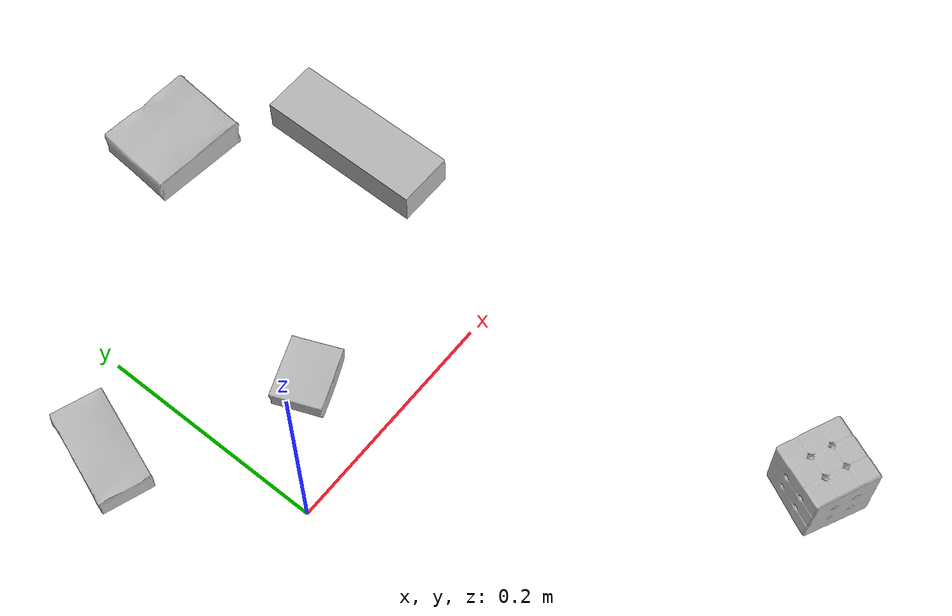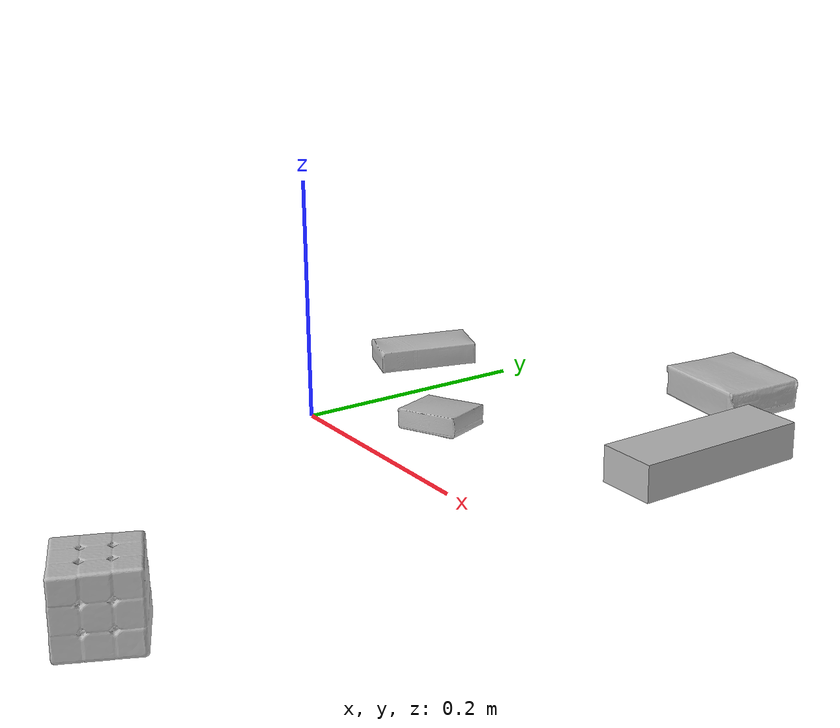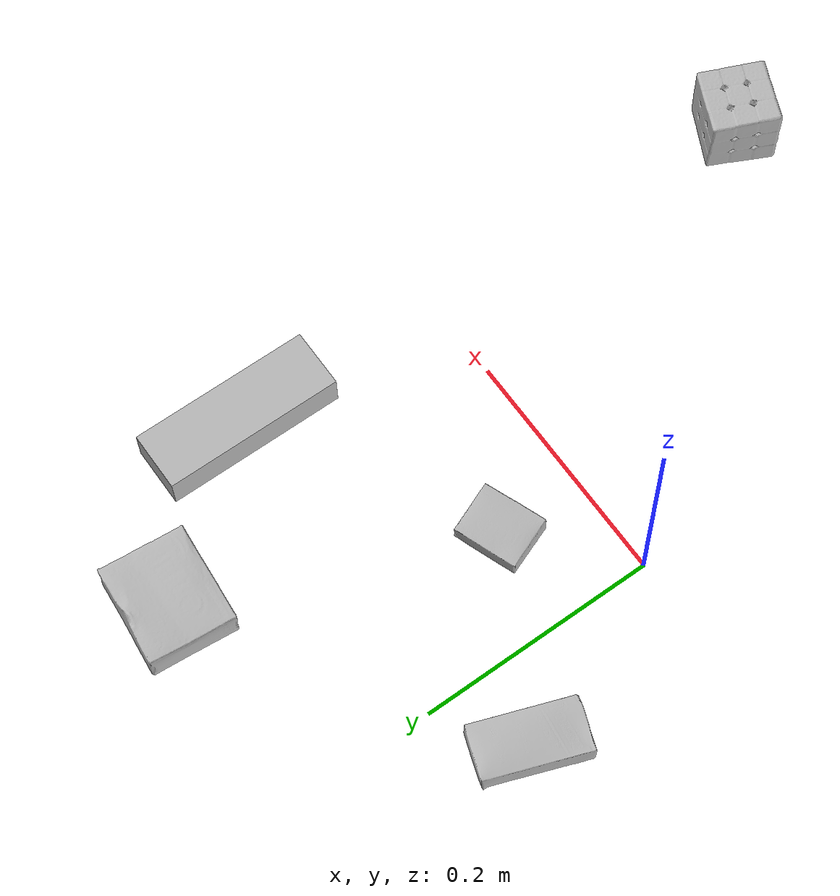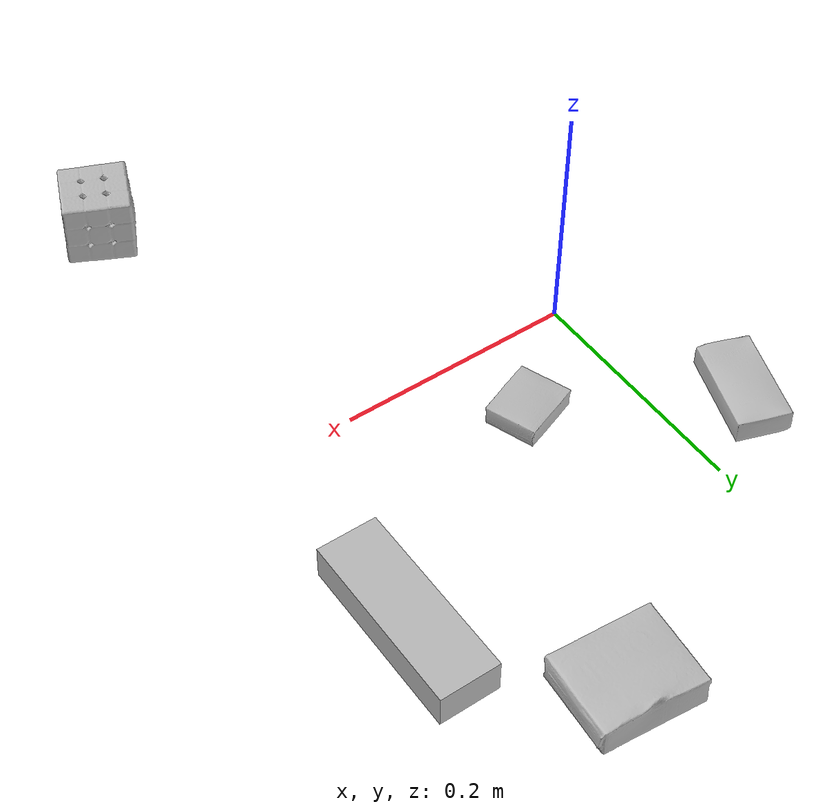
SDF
<sdf version="1.4">
  <world name="default">
    <light name="light1" type="point">
      <pose>0 0 1 0 0 0</pose>
      <diffuse>3 3 3 1</diffuse>
      <specular>3 3 3 1</specular>
    </light>
    <light name="light2" type="point">
      <pose>0 0.5 2 0 0 0</pose>
      <diffuse>1 1 1 1</diffuse>
      <specular>1 1 1 1</specular>
    </light>
    <light name="light3" type="point">
      <pose>0 0.5 2 0 0 0</pose>
      <diffuse>3 3 3 1</diffuse>
      <specular>3 3 3 1</specular>
    </light>
    <scene>
      <ambient>0.7 0.7 0.7</ambient>
    </scene>
    <model name="box1">
      <link name="link_box1">
        <collision name="default">
          <geometry>
            <mesh>
              <uri>model://jenga/collision_meshes/collision.obj</uri>
              <scale>1.0 1.0 1.0</scale>
            </mesh>
          </geometry>
          <surface>
            <friction>
              <ode>
                <mu>0.5</mu>
                <mu2>0.5</mu2>
              </ode>
            </friction>
          <contact>
        <ode>
            <max_vel>0</max_vel>
            <min_depth>0.0001</min_depth>
            <kp>1e8</kp>
        </ode>
    </contact></surface>
        </collision>
        <visual name="default">
          <geometry>
            <mesh>
              <uri>model://jenga/visual_meshes/visual.dae</uri>
              <scale>1.0 1.0 1.0</scale>
            </mesh>
          </geometry>
        </visual>
        <inertial>
          <mass>0.28879067301750183</mass>
          <pose>-2.502855807051674e-07 -0.00010250010382151231 -4.0923401684267446e-05 0.0 -7.342154049184251e-07 0.0</pose>
          <inertia>
            <ixx>7.991539e-05</ixx>
            <iyy>0.00054150453</iyy>
            <izz>0.00057810213</izz>
            <ixy>0</ixy>
            <ixz>0</ixz>
            <iyz>0</iyz>
          </inertia>
        </inertial>
      </link>
      <pose>0.27497005462646484 0.1830986589193344 0.014999997802078724 1.959249018654416e-08 -1.5102853059088133e-10 -1.5731331488138296</pose>
    </model>
    <model name="box2">
      <link name="link_box2">
        <collision name="default">
          <geometry>
            <mesh>
              <uri>model://sugar_box/collision_meshes/collision.obj</uri>
              <scale>0.5 0.5 0.5</scale>
            </mesh>
          </geometry>
          <surface>
            <friction>
              <ode>
                <mu>0.5</mu>
                <mu2>0.5</mu2>
              </ode>
            </friction>
          <contact>
        <ode>
            <max_vel>0</max_vel>
            <min_depth>0.0001</min_depth>
            <kp>1e8</kp>
        </ode>
    </contact></surface>
        </collision>
        <visual name="default">
          <geometry>
            <mesh>
              <uri>model://sugar_box/visual_meshes/visual.dae</uri>
              <scale>0.5 0.5 0.5</scale>
            </mesh>
          </geometry>
        </visual>
        <inertial>
          <mass>0.10389333218336105</mass>
          <pose>0.000517186417710036 1.9245549992774613e-05 -0.00018182402709499002 -0.00040462615469338603 0.0010506637547558321 0.0026153785561208315</pose>
          <inertia>
            <ixx>2.1640906e-05</ixx>
            <iyy>6.994788e-05</iyy>
            <izz>8.373595e-05</izz>
            <ixy>0</ixy>
            <ixz>0</ixz>
            <iyz>0</iyz>
          </inertia>
        </inertial>
      </link>
      <pose>-0.06303194910287857 0.1540059894323349 0.011399302631616592 0.0007755221418001449 -0.023432720898729706 1.2224869170566972</pose>
    </model>
    <model name="box3">
      <link name="link_box3">
        <collision name="default">
          <geometry>
            <mesh>
              <uri>model://rubiks_cube/collision_meshes/collision.obj</uri>
              <scale>1.0 1.0 1.0</scale>
            </mesh>
          </geometry>
          <surface>
            <friction>
              <ode>
                <mu>0.5</mu>
                <mu2>0.5</mu2>
              </ode>
            </friction>
          <contact>
        <ode>
            <max_vel>0</max_vel>
            <min_depth>0.0001</min_depth>
            <kp>1e8</kp>
        </ode>
    </contact></surface>
        </collision>
        <visual name="default">
          <geometry>
            <mesh>
              <uri>model://rubiks_cube/visual_meshes/visual.dae</uri>
              <scale>1.0 1.0 1.0</scale>
            </mesh>
          </geometry>
        </visual>
        <inertial>
          <mass>0.21973572671413422</mass>
          <pose>2.6721041649580002e-05 5.256966323941015e-05 -7.264316082000732e-06 -0.054673783840129137 -0.09814154164948871 -0.03445565380518822</pose>
          <inertia>
            <ixx>0.00012141874</ixx>
            <iyy>0.000120852514</iyy>
            <izz>0.00012242487</izz>
            <ixy>0</ixy>
            <ixz>0</ixz>
            <iyz>0</iyz>
          </inertia>
        </inertial>
      </link>
      <pose>0.2586744427680969 -0.2916003167629242 0.02867898717522621 -2.91611576074072e-06 -1.9574879576990087e-07 -1.9909686404812361</pose>
    </model>
    <model name="box4">
      <link name="link_box4">
        <collision name="default">
          <geometry>
            <mesh>
              <uri>model://pudding_box/collision_meshes/collision.obj</uri>
              <scale>0.5 0.5 0.5</scale>
            </mesh>
          </geometry>
          <surface>
            <friction>
              <ode>
                <mu>0.5</mu>
                <mu2>0.5</mu2>
              </ode>
            </friction>
          <contact>
        <ode>
            <max_vel>0</max_vel>
            <min_depth>0.0001</min_depth>
            <kp>1e8</kp>
        </ode>
    </contact></surface>
        </collision>
        <visual name="default">
          <geometry>
            <mesh>
              <uri>model://pudding_box/visual_meshes/visual.dae</uri>
              <scale>0.5 0.5 0.5</scale>
            </mesh>
          </geometry>
        </visual>
        <inertial>
          <mass>0.0391676165163517</mass>
          <pose>0.00024474109522998333 0.00040339428232982755 -0.0002594413817860186 0.005213101313254789 -0.0066037982630024914 0.020079830751203582</pose>
          <inertia>
            <ixx>1.1069244e-05</ixx>
            <iyy>7.447467e-06</iyy>
            <izz>1.634663e-05</izz>
            <ixy>0</ixy>
            <ixz>0</ixz>
            <iyz>0</iyz>
          </inertia>
        </inertial>
      </link>
      <pose>0.08432988822460175 0.07300721853971481 0.009862901642918587 0.0223485003831262 -0.011391766554399801 -1.1994217795935092</pose>
    </model>
    <model name="box5">
      <link name="link_box5">
        <collision name="default">
          <geometry>
            <mesh>
              <uri>model://gelatin_box/collision_meshes/collision.obj</uri>
              <scale>1.0 1.0 1.0</scale>
            </mesh>
          </geometry>
          <surface>
            <friction>
              <ode>
                <mu>0.5</mu>
                <mu2>0.5</mu2>
              </ode>
            </friction>
          <contact>
        <ode>
            <max_vel>0</max_vel>
            <min_depth>0.0001</min_depth>
            <kp>1e8</kp>
        </ode>
    </contact></surface>
        </collision>
        <visual name="default">
          <geometry>
            <mesh>
              <uri>model://gelatin_box/visual_meshes/visual.dae</uri>
              <scale>1.0 1.0 1.0</scale>
            </mesh>
          </geometry>
        </visual>
        <inertial>
          <mass>0.24157556891441345</mass>
          <pose>0.0004319618456065655 0.00011156872642459348 -0.0003640321083366871 -0.0010503718658393805 -0.0047558177571565665 0.016440565059328244</pose>
          <inertia>
            <ixx>0.00017053263</ixx>
            <iyy>0.00012181056</iyy>
            <izz>0.00025958868</izz>
            <ixy>0</ixy>
            <ixz>0</ixz>
            <iyz>0</iyz>
          </inertia>
        </inertial>
      </link>
      <pose>0.18150803446769714 0.3074965476989746 0.01516831573098898 0.005596408140717051 -0.007303361715808159 1.4696021387785296</pose>
    </model>
  <physics type="ode">
      <max_contacts>50</max_contacts>
      <ode>
        <solver>
          <type>quick</type>
          <iters>75</iters>
        </solver>
        <constraints>
          <contact_max_correcting_vel>0</contact_max_correcting_vel>
          <contact_surface_layer>0</contact_surface_layer>
        </constraints>
      </ode>
    </physics></world>
</sdf>
